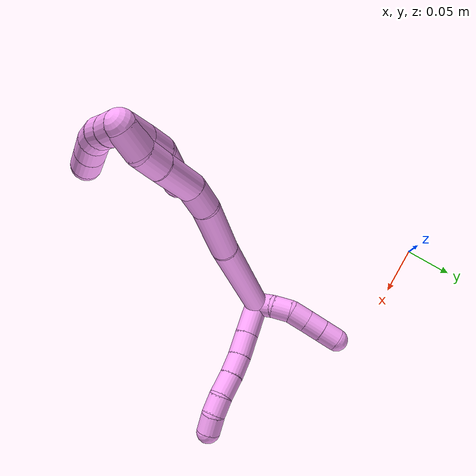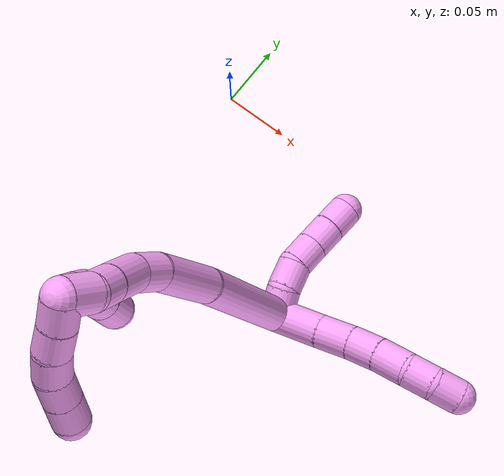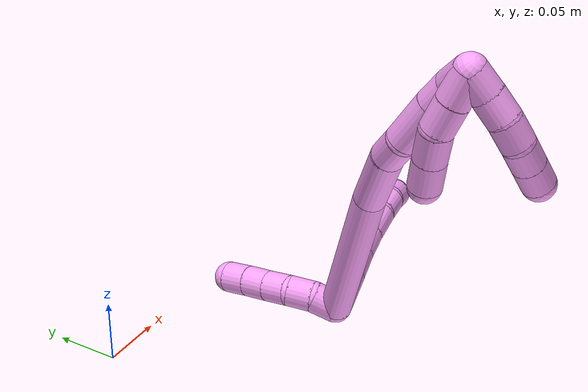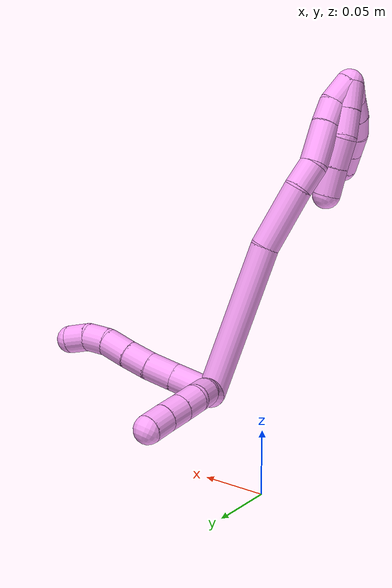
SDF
<sdf version="1.7">
 <world name="default">
  <model name="4">
   <static>0</static>
   <link name="4">
    <collision name="collision-cylinder-e_1_2_8">
     <pose>0.00788 0.016672 2.6e-05 -1.56923 0.441542 -0.440872</pose>
     <geometry><cylinder><radius>0.0125</radius><length>0.036882</length></cylinder></geometry>
     <surface>
      <friction><ode><mu>1.16</mu><mu2>1.16</mu2><slip1>0</slip1><slip2>0</slip2></ode></friction>
      <contact><ode><kp>1e+06</kp><kd>1</kd><max_vel>0</max_vel><min_depth>0.001</min_depth></ode></contact>
     </surface>
    </collision>
    <visual name="visual-cylinder-e_1_2_8">
     <pose>0.00788 0.016672 2.6e-05 -1.56923 0.441542 -0.440872</pose>
     <geometry><cylinder><radius>0.0125</radius><length>0.036882</length></cylinder></geometry>
     <material><ambient>1 0.65098 0.996078 1</ambient></material>
    </visual>
    <collision name="collision-cylinder-e_2_8_9">
     <pose>0.021027 0.044944 0.000166 -1.56102 0.42614 -0.422117</pose>
     <geometry><cylinder><radius>0.0125</radius><length>0.025479</length></cylinder></geometry>
     <surface>
      <friction><ode><mu>1.16</mu><mu2>1.16</mu2><slip1>0</slip1><slip2>0</slip2></ode></friction>
      <contact><ode><kp>1e+06</kp><kd>1</kd><max_vel>0</max_vel><min_depth>0.001</min_depth></ode></contact>
     </surface>
    </collision>
    <visual name="visual-cylinder-e_2_8_9">
     <pose>0.021027 0.044944 0.000166 -1.56102 0.42614 -0.422117</pose>
     <geometry><cylinder><radius>0.0125</radius><length>0.025479</length></cylinder></geometry>
     <material><ambient>1 0.65098 0.996078 1</ambient></material>
    </visual>
    <collision name="collision-cylinder-e_3_9_10">
     <pose>0.031359 0.066611 0.001294 -1.47034 0.46417 -0.421104</pose>
     <geometry><cylinder><radius>0.0125</radius><length>0.022631</length></cylinder></geometry>
     <surface>
      <friction><ode><mu>1.16</mu><mu2>1.16</mu2><slip1>0</slip1><slip2>0</slip2></ode></friction>
      <contact><ode><kp>1e+06</kp><kd>1</kd><max_vel>0</max_vel><min_depth>0.001</min_depth></ode></contact>
     </surface>
    </collision>
    <visual name="visual-cylinder-e_3_9_10">
     <pose>0.031359 0.066611 0.001294 -1.47034 0.46417 -0.421104</pose>
     <geometry><cylinder><radius>0.0125</radius><length>0.022631</length></cylinder></geometry>
     <material><ambient>1 0.65098 0.996078 1</ambient></material>
    </visual>
    <collision name="collision-cylinder-e_4_10_11">
     <pose>0.042529 0.087196 0.003916 -1.41916 0.520916 -0.450009</pose>
     <geometry><cylinder><radius>0.0125</radius><length>0.024533</length></cylinder></geometry>
     <surface>
      <friction><ode><mu>1.16</mu><mu2>1.16</mu2><slip1>0</slip1><slip2>0</slip2></ode></friction>
      <contact><ode><kp>1e+06</kp><kd>1</kd><max_vel>0</max_vel><min_depth>0.001</min_depth></ode></contact>
     </surface>
    </collision>
    <visual name="visual-cylinder-e_4_10_11">
     <pose>0.042529 0.087196 0.003916 -1.41916 0.520916 -0.450009</pose>
     <geometry><cylinder><radius>0.0125</radius><length>0.024533</length></cylinder></geometry>
     <material><ambient>1 0.65098 0.996078 1</ambient></material>
    </visual>
    <collision name="collision-cylinder-e_5_11_12">
     <pose>0.054405 0.106061 0.004383 -1.70653 0.600573 -0.681912</pose>
     <geometry><cylinder><radius>0.0125</radius><length>0.020424</length></cylinder></geometry>
     <surface>
      <friction><ode><mu>1.16</mu><mu2>1.16</mu2><slip1>0</slip1><slip2>0</slip2></ode></friction>
      <contact><ode><kp>1e+06</kp><kd>1</kd><max_vel>0</max_vel><min_depth>0.001</min_depth></ode></contact>
     </surface>
    </collision>
    <visual name="visual-cylinder-e_5_11_12">
     <pose>0.054405 0.106061 0.004383 -1.70653 0.600573 -0.681912</pose>
     <geometry><cylinder><radius>0.0125</radius><length>0.020424</length></cylinder></geometry>
     <material><ambient>1 0.65098 0.996078 1</ambient></material>
    </visual>
    <collision name="collision-cylinder-e_6_12_6">
     <pose>0.066209 0.121304 -0.000828 -2.10409 0.645723 -1.06017</pose>
     <geometry><cylinder><radius>0.0125</radius><length>0.020051</length></cylinder></geometry>
     <surface>
      <friction><ode><mu>1.16</mu><mu2>1.16</mu2><slip1>0</slip1><slip2>0</slip2></ode></friction>
      <contact><ode><kp>1e+06</kp><kd>1</kd><max_vel>0</max_vel><min_depth>0.001</min_depth></ode></contact>
     </surface>
    </collision>
    <visual name="visual-cylinder-e_6_12_6">
     <pose>0.066209 0.121304 -0.000828 -2.10409 0.645723 -1.06017</pose>
     <geometry><cylinder><radius>0.0125</radius><length>0.020051</length></cylinder></geometry>
     <material><ambient>1 0.65098 0.996078 1</ambient></material>
    </visual>
    <collision name="collision-cylinder-e_1_2_13">
     <pose>-0.009051 0.003974 -0.001512 -1.9344 -1.13166 1.4888</pose>
     <geometry><cylinder><radius>0.0125</radius><length>0.02</length></cylinder></geometry>
     <surface>
      <friction><ode><mu>1.16</mu><mu2>1.16</mu2><slip1>0</slip1><slip2>0</slip2></ode></friction>
      <contact><ode><kp>1e+06</kp><kd>1</kd><max_vel>0</max_vel><min_depth>0.001</min_depth></ode></contact>
     </surface>
    </collision>
    <visual name="visual-cylinder-e_1_2_13">
     <pose>-0.009051 0.003974 -0.001512 -1.9344 -1.13166 1.4888</pose>
     <geometry><cylinder><radius>0.0125</radius><length>0.02</length></cylinder></geometry>
     <material><ambient>1 0.65098 0.996078 1</ambient></material>
    </visual>
    <collision name="collision-cylinder-e_2_13_14">
     <pose>-0.026147 0.011692 -0.007635 -2.45951 -0.934833 1.91587</pose>
     <geometry><cylinder><radius>0.0125</radius><length>0.02</length></cylinder></geometry>
     <surface>
      <friction><ode><mu>1.16</mu><mu2>1.16</mu2><slip1>0</slip1><slip2>0</slip2></ode></friction>
      <contact><ode><kp>1e+06</kp><kd>1</kd><max_vel>0</max_vel><min_depth>0.001</min_depth></ode></contact>
     </surface>
    </collision>
    <visual name="visual-cylinder-e_2_13_14">
     <pose>-0.026147 0.011692 -0.007635 -2.45951 -0.934833 1.91587</pose>
     <geometry><cylinder><radius>0.0125</radius><length>0.02</length></cylinder></geometry>
     <material><ambient>1 0.65098 0.996078 1</ambient></material>
    </visual>
    <collision name="collision-cylinder-e_3_14_15">
     <pose>-0.039752 0.020213 -0.019047 -2.52928 -0.589577 1.5306</pose>
     <geometry><cylinder><radius>0.0125</radius><length>0.02</length></cylinder></geometry>
     <surface>
      <friction><ode><mu>1.16</mu><mu2>1.16</mu2><slip1>0</slip1><slip2>0</slip2></ode></friction>
      <contact><ode><kp>1e+06</kp><kd>1</kd><max_vel>0</max_vel><min_depth>0.001</min_depth></ode></contact>
     </surface>
    </collision>
    <visual name="visual-cylinder-e_3_14_15">
     <pose>-0.039752 0.020213 -0.019047 -2.52928 -0.589577 1.5306</pose>
     <geometry><cylinder><radius>0.0125</radius><length>0.02</length></cylinder></geometry>
     <material><ambient>1 0.65098 0.996078 1</ambient></material>
    </visual>
    <collision name="collision-cylinder-e_4_15_16">
     <pose>-0.050846 0.029931 -0.032555 -2.50669 -0.586408 1.48629</pose>
     <geometry><cylinder><radius>0.0125</radius><length>0.02</length></cylinder></geometry>
     <surface>
      <friction><ode><mu>1.16</mu><mu2>1.16</mu2><slip1>0</slip1><slip2>0</slip2></ode></friction>
      <contact><ode><kp>1e+06</kp><kd>1</kd><max_vel>0</max_vel><min_depth>0.001</min_depth></ode></contact>
     </surface>
    </collision>
    <visual name="visual-cylinder-e_4_15_16">
     <pose>-0.050846 0.029931 -0.032555 -2.50669 -0.586408 1.48629</pose>
     <geometry><cylinder><radius>0.0125</radius><length>0.02</length></cylinder></geometry>
     <material><ambient>1 0.65098 0.996078 1</ambient></material>
    </visual>
    <collision name="collision-cylinder-e_5_16_5">
     <pose>-0.061808 0.039633 -0.04618 -2.53879 -0.573723 1.5184</pose>
     <geometry><cylinder><radius>0.0125</radius><length>0.02</length></cylinder></geometry>
     <surface>
      <friction><ode><mu>1.16</mu><mu2>1.16</mu2><slip1>0</slip1><slip2>0</slip2></ode></friction>
      <contact><ode><kp>1e+06</kp><kd>1</kd><max_vel>0</max_vel><min_depth>0.001</min_depth></ode></contact>
     </surface>
    </collision>
    <visual name="visual-cylinder-e_5_16_5">
     <pose>-0.061808 0.039633 -0.04618 -2.53879 -0.573723 1.5184</pose>
     <geometry><cylinder><radius>0.0125</radius><length>0.02</length></cylinder></geometry>
     <material><ambient>1 0.65098 0.996078 1</ambient></material>
    </visual>
    <collision name="collision-cylinder-e_1_2_17">
     <pose>-0.018307 0.007821 0.065094 -0.119573 -0.272292 0.0164</pose>
     <geometry><cylinder><radius>0.0125</radius><length>0.136141</length></cylinder></geometry>
     <surface>
      <friction><ode><mu>1.16</mu><mu2>1.16</mu2><slip1>0</slip1><slip2>0</slip2></ode></friction>
      <contact><ode><kp>1e+06</kp><kd>1</kd><max_vel>0</max_vel><min_depth>0.001</min_depth></ode></contact>
     </surface>
    </collision>
    <visual name="visual-cylinder-e_1_2_17">
     <pose>-0.018307 0.007821 0.065094 -0.119573 -0.272292 0.0164</pose>
     <geometry><cylinder><radius>0.0125</radius><length>0.136141</length></cylinder></geometry>
     <material><ambient>1 0.65098 0.996078 1</ambient></material>
    </visual>
    <collision name="collision-cylinder-e_2_17_18">
     <pose>-0.044403 0.014143 0.157653 0.05451 -0.275983 -0.007572</pose>
     <geometry><cylinder><radius>0.0125</radius><length>0.057175</length></cylinder></geometry>
     <surface>
      <friction><ode><mu>1.16</mu><mu2>1.16</mu2><slip1>0</slip1><slip2>0</slip2></ode></friction>
      <contact><ode><kp>1e+06</kp><kd>1</kd><max_vel>0</max_vel><min_depth>0.001</min_depth></ode></contact>
     </surface>
    </collision>
    <visual name="visual-cylinder-e_2_17_18">
     <pose>-0.044403 0.014143 0.157653 0.05451 -0.275983 -0.007572</pose>
     <geometry><cylinder><radius>0.0125</radius><length>0.057175</length></cylinder></geometry>
     <material><ambient>1 0.65098 0.996078 1</ambient></material>
    </visual>
    <collision name="collision-cylinder-e_3_18_19">
     <pose>-0.053337 0.010966 0.197022 0.140063 -0.094842 -0.006658</pose>
     <geometry><cylinder><radius>0.0125</radius><length>0.024152</length></cylinder></geometry>
     <surface>
      <friction><ode><mu>1.16</mu><mu2>1.16</mu2><slip1>0</slip1><slip2>0</slip2></ode></friction>
      <contact><ode><kp>1e+06</kp><kd>1</kd><max_vel>0</max_vel><min_depth>0.001</min_depth></ode></contact>
     </surface>
    </collision>
    <visual name="visual-cylinder-e_3_18_19">
     <pose>-0.053337 0.010966 0.197022 0.140063 -0.094842 -0.006658</pose>
     <geometry><cylinder><radius>0.0125</radius><length>0.024152</length></cylinder></geometry>
     <material><ambient>1 0.65098 0.996078 1</ambient></material>
    </visual>
    <collision name="collision-cylinder-e_4_19_20">
     <pose>-0.053047 0.011561 0.227538 -0.12151 0.076312 -0.004644</pose>
     <geometry><cylinder><radius>0.0125</radius><length>0.03761</length></cylinder></geometry>
     <surface>
      <friction><ode><mu>1.16</mu><mu2>1.16</mu2><slip1>0</slip1><slip2>0</slip2></ode></friction>
      <contact><ode><kp>1e+06</kp><kd>1</kd><max_vel>0</max_vel><min_depth>0.001</min_depth></ode></contact>
     </surface>
    </collision>
    <visual name="visual-cylinder-e_4_19_20">
     <pose>-0.053047 0.011561 0.227538 -0.12151 0.076312 -0.004644</pose>
     <geometry><cylinder><radius>0.0125</radius><length>0.03761</length></cylinder></geometry>
     <material><ambient>1 0.65098 0.996078 1</ambient></material>
    </visual>
    <collision name="collision-cylinder-e_5_20_21">
     <pose>-0.05048 0.01441 0.256678 -0.054675 0.107024 -0.002929</pose>
     <geometry><cylinder><radius>0.0125</radius><length>0.021209</length></cylinder></geometry>
     <surface>
      <friction><ode><mu>1.16</mu><mu2>1.16</mu2><slip1>0</slip1><slip2>0</slip2></ode></friction>
      <contact><ode><kp>1e+06</kp><kd>1</kd><max_vel>0</max_vel><min_depth>0.001</min_depth></ode></contact>
     </surface>
    </collision>
    <visual name="visual-cylinder-e_5_20_21">
     <pose>-0.05048 0.01441 0.256678 -0.054675 0.107024 -0.002929</pose>
     <geometry><cylinder><radius>0.0125</radius><length>0.021209</length></cylinder></geometry>
     <material><ambient>1 0.65098 0.996078 1</ambient></material>
    </visual>
    <collision name="collision-cylinder-e_6_21_1">
     <pose>-0.04985 0.012259 0.278735 0.232247 -0.04238 -0.004944</pose>
     <geometry><cylinder><radius>0.0125</radius><length>0.023713</length></cylinder></geometry>
     <surface>
      <friction><ode><mu>1.16</mu><mu2>1.16</mu2><slip1>0</slip1><slip2>0</slip2></ode></friction>
      <contact><ode><kp>1e+06</kp><kd>1</kd><max_vel>0</max_vel><min_depth>0.001</min_depth></ode></contact>
     </surface>
    </collision>
    <visual name="visual-cylinder-e_6_21_1">
     <pose>-0.04985 0.012259 0.278735 0.232247 -0.04238 -0.004944</pose>
     <geometry><cylinder><radius>0.0125</radius><length>0.023713</length></cylinder></geometry>
     <material><ambient>1 0.65098 0.996078 1</ambient></material>
    </visual>
    <collision name="collision-cylinder-e_1_1_22">
     <pose>-0.050317 0.005762 0.278516 2.83098 0.002867 0.018309</pose>
     <geometry><cylinder><radius>0.0125</radius><length>0.024673</length></cylinder></geometry>
     <surface>
      <friction><ode><mu>1.16</mu><mu2>1.16</mu2><slip1>0</slip1><slip2>0</slip2></ode></friction>
      <contact><ode><kp>1e+06</kp><kd>1</kd><max_vel>0</max_vel><min_depth>0.001</min_depth></ode></contact>
     </surface>
    </collision>
    <visual name="visual-cylinder-e_1_1_22">
     <pose>-0.050317 0.005762 0.278516 2.83098 0.002867 0.018309</pose>
     <geometry><cylinder><radius>0.0125</radius><length>0.024673</length></cylinder></geometry>
     <material><ambient>1 0.65098 0.996078 1</ambient></material>
    </visual>
    <collision name="collision-cylinder-e_2_22_23">
     <pose>-0.050102 -0.001314 0.255254 2.86203 0.014935 0.106051</pose>
     <geometry><cylinder><radius>0.0125</radius><length>0.023964</length></cylinder></geometry>
     <surface>
      <friction><ode><mu>1.16</mu><mu2>1.16</mu2><slip1>0</slip1><slip2>0</slip2></ode></friction>
      <contact><ode><kp>1e+06</kp><kd>1</kd><max_vel>0</max_vel><min_depth>0.001</min_depth></ode></contact>
     </surface>
    </collision>
    <visual name="visual-cylinder-e_2_22_23">
     <pose>-0.050102 -0.001314 0.255254 2.86203 0.014935 0.106051</pose>
     <geometry><cylinder><radius>0.0125</radius><length>0.023964</length></cylinder></geometry>
     <material><ambient>1 0.65098 0.996078 1</ambient></material>
    </visual>
    <collision name="collision-cylinder-e_3_23_24">
     <pose>-0.045646 -0.007031 0.231552 2.94629 0.331578 2.08226</pose>
     <geometry><cylinder><radius>0.0125</radius><length>0.026277</length></cylinder></geometry>
     <surface>
      <friction><ode><mu>1.16</mu><mu2>1.16</mu2><slip1>0</slip1><slip2>0</slip2></ode></friction>
      <contact><ode><kp>1e+06</kp><kd>1</kd><max_vel>0</max_vel><min_depth>0.001</min_depth></ode></contact>
     </surface>
    </collision>
    <visual name="visual-cylinder-e_3_23_24">
     <pose>-0.045646 -0.007031 0.231552 2.94629 0.331578 2.08226</pose>
     <geometry><cylinder><radius>0.0125</radius><length>0.026277</length></cylinder></geometry>
     <material><ambient>1 0.65098 0.996078 1</ambient></material>
    </visual>
    <collision name="collision-cylinder-e_4_24_4">
     <pose>-0.037166 -0.0122 0.207874 2.90607 0.341763 1.93962</pose>
     <geometry><cylinder><radius>0.0125</radius><length>0.025085</length></cylinder></geometry>
     <surface>
      <friction><ode><mu>1.16</mu><mu2>1.16</mu2><slip1>0</slip1><slip2>0</slip2></ode></friction>
      <contact><ode><kp>1e+06</kp><kd>1</kd><max_vel>0</max_vel><min_depth>0.001</min_depth></ode></contact>
     </surface>
    </collision>
    <visual name="visual-cylinder-e_4_24_4">
     <pose>-0.037166 -0.0122 0.207874 2.90607 0.341763 1.93962</pose>
     <geometry><cylinder><radius>0.0125</radius><length>0.025085</length></cylinder></geometry>
     <material><ambient>1 0.65098 0.996078 1</ambient></material>
    </visual>
    <collision name="collision-cylinder-e_1_1_25">
     <pose>-0.042421 0.004522 0.2868 2.17548 0.915923 1.50872</pose>
     <geometry><cylinder><radius>0.0125</radius><length>0.02</length></cylinder></geometry>
     <surface>
      <friction><ode><mu>1.16</mu><mu2>1.16</mu2><slip1>0</slip1><slip2>0</slip2></ode></friction>
      <contact><ode><kp>1e+06</kp><kd>1</kd><max_vel>0</max_vel><min_depth>0.001</min_depth></ode></contact>
     </surface>
    </collision>
    <visual name="visual-cylinder-e_1_1_25">
     <pose>-0.042421 0.004522 0.2868 2.17548 0.915923 1.50872</pose>
     <geometry><cylinder><radius>0.0125</radius><length>0.02</length></cylinder></geometry>
     <material><ambient>1 0.65098 0.996078 1</ambient></material>
    </visual>
    <collision name="collision-cylinder-e_2_25_26">
     <pose>-0.026885 -0.006027 0.279948 2.12003 0.86408 1.377</pose>
     <geometry><cylinder><radius>0.0125</radius><length>0.02</length></cylinder></geometry>
     <surface>
      <friction><ode><mu>1.16</mu><mu2>1.16</mu2><slip1>0</slip1><slip2>0</slip2></ode></friction>
      <contact><ode><kp>1e+06</kp><kd>1</kd><max_vel>0</max_vel><min_depth>0.001</min_depth></ode></contact>
     </surface>
    </collision>
    <visual name="visual-cylinder-e_2_25_26">
     <pose>-0.026885 -0.006027 0.279948 2.12003 0.86408 1.377</pose>
     <geometry><cylinder><radius>0.0125</radius><length>0.02</length></cylinder></geometry>
     <material><ambient>1 0.65098 0.996078 1</ambient></material>
    </visual>
    <collision name="collision-cylinder-e_3_26_27">
     <pose>-0.011735 -0.015963 0.271686 2.40726 0.854902 1.73926</pose>
     <geometry><cylinder><radius>0.0125</radius><length>0.02</length></cylinder></geometry>
     <surface>
      <friction><ode><mu>1.16</mu><mu2>1.16</mu2><slip1>0</slip1><slip2>0</slip2></ode></friction>
      <contact><ode><kp>1e+06</kp><kd>1</kd><max_vel>0</max_vel><min_depth>0.001</min_depth></ode></contact>
     </surface>
    </collision>
    <visual name="visual-cylinder-e_3_26_27">
     <pose>-0.011735 -0.015963 0.271686 2.40726 0.854902 1.73926</pose>
     <geometry><cylinder><radius>0.0125</radius><length>0.02</length></cylinder></geometry>
     <material><ambient>1 0.65098 0.996078 1</ambient></material>
    </visual>
    <collision name="collision-cylinder-e_4_27_28">
     <pose>0.003462 -0.022392 0.260705 2.82066 0.871214 2.47223</pose>
     <geometry><cylinder><radius>0.0125</radius><length>0.02</length></cylinder></geometry>
     <surface>
      <friction><ode><mu>1.16</mu><mu2>1.16</mu2><slip1>0</slip1><slip2>0</slip2></ode></friction>
      <contact><ode><kp>1e+06</kp><kd>1</kd><max_vel>0</max_vel><min_depth>0.001</min_depth></ode></contact>
     </surface>
    </collision>
    <visual name="visual-cylinder-e_4_27_28">
     <pose>0.003462 -0.022392 0.260705 2.82066 0.871214 2.47223</pose>
     <geometry><cylinder><radius>0.0125</radius><length>0.02</length></cylinder></geometry>
     <material><ambient>1 0.65098 0.996078 1</ambient></material>
    </visual>
    <collision name="collision-cylinder-e_5_28_3">
     <pose>0.018763 -0.026458 0.248484 2.82019 0.871047 2.47117</pose>
     <geometry><cylinder><radius>0.0125</radius><length>0.02</length></cylinder></geometry>
     <surface>
      <friction><ode><mu>1.16</mu><mu2>1.16</mu2><slip1>0</slip1><slip2>0</slip2></ode></friction>
      <contact><ode><kp>1e+06</kp><kd>1</kd><max_vel>0</max_vel><min_depth>0.001</min_depth></ode></contact>
     </surface>
    </collision>
    <visual name="visual-cylinder-e_5_28_3">
     <pose>0.018763 -0.026458 0.248484 2.82019 0.871047 2.47117</pose>
     <geometry><cylinder><radius>0.0125</radius><length>0.02</length></cylinder></geometry>
     <material><ambient>1 0.65098 0.996078 1</ambient></material>
    </visual>
    <collision name="collision-sphere-3">
     <pose>0.026413 -0.028492 0.242373 0 -0 0</pose>
     <geometry><sphere><radius>0.0125</radius></sphere></geometry>
     <surface>
      <friction><ode><mu>1.16</mu><mu2>1.16</mu2><slip1>0</slip1><slip2>0</slip2></ode></friction>
      <contact><ode><kp>1e+06</kp><kd>1</kd><max_vel>0</max_vel><min_depth>0.001</min_depth></ode></contact>
     </surface>
    </collision>
    <visual name="visual-sphere-3">
     <pose>0.026413 -0.028492 0.242373 0 -0 0</pose>
     <geometry><sphere><radius>0.0125</radius></sphere></geometry>
     <material><ambient>1 0.65098 0.996078 1</ambient></material>
    </visual>
    <collision name="collision-sphere-28">
     <pose>0.011113 -0.024423 0.254594 0 -0 0</pose>
     <geometry><sphere><radius>0.0125</radius></sphere></geometry>
     <surface>
      <friction><ode><mu>1.16</mu><mu2>1.16</mu2><slip1>0</slip1><slip2>0</slip2></ode></friction>
      <contact><ode><kp>1e+06</kp><kd>1</kd><max_vel>0</max_vel><min_depth>0.001</min_depth></ode></contact>
     </surface>
    </collision>
    <visual name="visual-sphere-28">
     <pose>0.011113 -0.024423 0.254594 0 -0 0</pose>
     <geometry><sphere><radius>0.0125</radius></sphere></geometry>
     <material><ambient>1 0.65098 0.996078 1</ambient></material>
    </visual>
    <collision name="collision-sphere-27">
     <pose>-0.00419 -0.020361 0.266815 0 -0 0</pose>
     <geometry><sphere><radius>0.0125</radius></sphere></geometry>
     <surface>
      <friction><ode><mu>1.16</mu><mu2>1.16</mu2><slip1>0</slip1><slip2>0</slip2></ode></friction>
      <contact><ode><kp>1e+06</kp><kd>1</kd><max_vel>0</max_vel><min_depth>0.001</min_depth></ode></contact>
     </surface>
    </collision>
    <visual name="visual-sphere-27">
     <pose>-0.00419 -0.020361 0.266815 0 -0 0</pose>
     <geometry><sphere><radius>0.0125</radius></sphere></geometry>
     <material><ambient>1 0.65098 0.996078 1</ambient></material>
    </visual>
    <collision name="collision-sphere-26">
     <pose>-0.01928 -0.011565 0.276558 0 -0 0</pose>
     <geometry><sphere><radius>0.0125</radius></sphere></geometry>
     <surface>
      <friction><ode><mu>1.16</mu><mu2>1.16</mu2><slip1>0</slip1><slip2>0</slip2></ode></friction>
      <contact><ode><kp>1e+06</kp><kd>1</kd><max_vel>0</max_vel><min_depth>0.001</min_depth></ode></contact>
     </surface>
    </collision>
    <visual name="visual-sphere-26">
     <pose>-0.01928 -0.011565 0.276558 0 -0 0</pose>
     <geometry><sphere><radius>0.0125</radius></sphere></geometry>
     <material><ambient>1 0.65098 0.996078 1</ambient></material>
    </visual>
    <collision name="collision-sphere-25">
     <pose>-0.03449 -0.000488 0.283337 0 -0 0</pose>
     <geometry><sphere><radius>0.0125</radius></sphere></geometry>
     <surface>
      <friction><ode><mu>1.16</mu><mu2>1.16</mu2><slip1>0</slip1><slip2>0</slip2></ode></friction>
      <contact><ode><kp>1e+06</kp><kd>1</kd><max_vel>0</max_vel><min_depth>0.001</min_depth></ode></contact>
     </surface>
    </collision>
    <visual name="visual-sphere-25">
     <pose>-0.03449 -0.000488 0.283337 0 -0 0</pose>
     <geometry><sphere><radius>0.0125</radius></sphere></geometry>
     <material><ambient>1 0.65098 0.996078 1</ambient></material>
    </visual>
    <collision name="collision-sphere-4">
     <pose>-0.032962 -0.014957 0.196383 0 -0 0</pose>
     <geometry><sphere><radius>0.0125</radius></sphere></geometry>
     <surface>
      <friction><ode><mu>1.16</mu><mu2>1.16</mu2><slip1>0</slip1><slip2>0</slip2></ode></friction>
      <contact><ode><kp>1e+06</kp><kd>1</kd><max_vel>0</max_vel><min_depth>0.001</min_depth></ode></contact>
     </surface>
    </collision>
    <visual name="visual-sphere-4">
     <pose>-0.032962 -0.014957 0.196383 0 -0 0</pose>
     <geometry><sphere><radius>0.0125</radius></sphere></geometry>
     <material><ambient>1 0.65098 0.996078 1</ambient></material>
    </visual>
    <collision name="collision-sphere-24">
     <pose>-0.041369 -0.009442 0.219365 0 -0 0</pose>
     <geometry><sphere><radius>0.0125</radius></sphere></geometry>
     <surface>
      <friction><ode><mu>1.16</mu><mu2>1.16</mu2><slip1>0</slip1><slip2>0</slip2></ode></friction>
      <contact><ode><kp>1e+06</kp><kd>1</kd><max_vel>0</max_vel><min_depth>0.001</min_depth></ode></contact>
     </surface>
    </collision>
    <visual name="visual-sphere-24">
     <pose>-0.041369 -0.009442 0.219365 0 -0 0</pose>
     <geometry><sphere><radius>0.0125</radius></sphere></geometry>
     <material><ambient>1 0.65098 0.996078 1</ambient></material>
    </visual>
    <collision name="collision-sphere-23">
     <pose>-0.049924 -0.00462 0.243739 0 -0 0</pose>
     <geometry><sphere><radius>0.0125</radius></sphere></geometry>
     <surface>
      <friction><ode><mu>1.16</mu><mu2>1.16</mu2><slip1>0</slip1><slip2>0</slip2></ode></friction>
      <contact><ode><kp>1e+06</kp><kd>1</kd><max_vel>0</max_vel><min_depth>0.001</min_depth></ode></contact>
     </surface>
    </collision>
    <visual name="visual-sphere-23">
     <pose>-0.049924 -0.00462 0.243739 0 -0 0</pose>
     <geometry><sphere><radius>0.0125</radius></sphere></geometry>
     <material><ambient>1 0.65098 0.996078 1</ambient></material>
    </visual>
    <collision name="collision-sphere-22">
     <pose>-0.050281 0.001991 0.26677 0 -0 0</pose>
     <geometry><sphere><radius>0.0125</radius></sphere></geometry>
     <surface>
      <friction><ode><mu>1.16</mu><mu2>1.16</mu2><slip1>0</slip1><slip2>0</slip2></ode></friction>
      <contact><ode><kp>1e+06</kp><kd>1</kd><max_vel>0</max_vel><min_depth>0.001</min_depth></ode></contact>
     </surface>
    </collision>
    <visual name="visual-sphere-22">
     <pose>-0.050281 0.001991 0.26677 0 -0 0</pose>
     <geometry><sphere><radius>0.0125</radius></sphere></geometry>
     <material><ambient>1 0.65098 0.996078 1</ambient></material>
    </visual>
    <collision name="collision-sphere-1">
     <pose>-0.050352 0.009533 0.290262 0 -0 0</pose>
     <geometry><sphere><radius>0.0125</radius></sphere></geometry>
     <surface>
      <friction><ode><mu>1.16</mu><mu2>1.16</mu2><slip1>0</slip1><slip2>0</slip2></ode></friction>
      <contact><ode><kp>1e+06</kp><kd>1</kd><max_vel>0</max_vel><min_depth>0.001</min_depth></ode></contact>
     </surface>
    </collision>
    <visual name="visual-sphere-1">
     <pose>-0.050352 0.009533 0.290262 0 -0 0</pose>
     <geometry><sphere><radius>0.0125</radius></sphere></geometry>
     <material><ambient>1 0.65098 0.996078 1</ambient></material>
    </visual>
    <collision name="collision-sphere-21">
     <pose>-0.049347 0.014986 0.267207 0 -0 0</pose>
     <geometry><sphere><radius>0.0125</radius></sphere></geometry>
     <surface>
      <friction><ode><mu>1.16</mu><mu2>1.16</mu2><slip1>0</slip1><slip2>0</slip2></ode></friction>
      <contact><ode><kp>1e+06</kp><kd>1</kd><max_vel>0</max_vel><min_depth>0.001</min_depth></ode></contact>
     </surface>
    </collision>
    <visual name="visual-sphere-21">
     <pose>-0.049347 0.014986 0.267207 0 -0 0</pose>
     <geometry><sphere><radius>0.0125</radius></sphere></geometry>
     <material><ambient>1 0.65098 0.996078 1</ambient></material>
    </visual>
    <collision name="collision-sphere-12">
     <pose>0.060176 0.114408 0.003243 0 -0 0</pose>
     <geometry><sphere><radius>0.0125</radius></sphere></geometry>
     <surface>
      <friction><ode><mu>1.16</mu><mu2>1.16</mu2><slip1>0</slip1><slip2>0</slip2></ode></friction>
      <contact><ode><kp>1e+06</kp><kd>1</kd><max_vel>0</max_vel><min_depth>0.001</min_depth></ode></contact>
     </surface>
    </collision>
    <visual name="visual-sphere-12">
     <pose>0.060176 0.114408 0.003243 0 -0 0</pose>
     <geometry><sphere><radius>0.0125</radius></sphere></geometry>
     <material><ambient>1 0.65098 0.996078 1</ambient></material>
    </visual>
    <collision name="collision-sphere-11">
     <pose>0.048634 0.097713 0.005523 0 -0 0</pose>
     <geometry><sphere><radius>0.0125</radius></sphere></geometry>
     <surface>
      <friction><ode><mu>1.16</mu><mu2>1.16</mu2><slip1>0</slip1><slip2>0</slip2></ode></friction>
      <contact><ode><kp>1e+06</kp><kd>1</kd><max_vel>0</max_vel><min_depth>0.001</min_depth></ode></contact>
     </surface>
    </collision>
    <visual name="visual-sphere-11">
     <pose>0.048634 0.097713 0.005523 0 -0 0</pose>
     <geometry><sphere><radius>0.0125</radius></sphere></geometry>
     <material><ambient>1 0.65098 0.996078 1</ambient></material>
    </visual>
    <collision name="collision-sphere-10">
     <pose>0.036424 0.076679 0.002309 0 -0 0</pose>
     <geometry><sphere><radius>0.0125</radius></sphere></geometry>
     <surface>
      <friction><ode><mu>1.16</mu><mu2>1.16</mu2><slip1>0</slip1><slip2>0</slip2></ode></friction>
      <contact><ode><kp>1e+06</kp><kd>1</kd><max_vel>0</max_vel><min_depth>0.001</min_depth></ode></contact>
     </surface>
    </collision>
    <visual name="visual-sphere-10">
     <pose>0.036424 0.076679 0.002309 0 -0 0</pose>
     <geometry><sphere><radius>0.0125</radius></sphere></geometry>
     <material><ambient>1 0.65098 0.996078 1</ambient></material>
    </visual>
    <collision name="collision-sphere-9">
     <pose>0.026293 0.056544 0.000279 0 -0 0</pose>
     <geometry><sphere><radius>0.0125</radius></sphere></geometry>
     <surface>
      <friction><ode><mu>1.16</mu><mu2>1.16</mu2><slip1>0</slip1><slip2>0</slip2></ode></friction>
      <contact><ode><kp>1e+06</kp><kd>1</kd><max_vel>0</max_vel><min_depth>0.001</min_depth></ode></contact>
     </surface>
    </collision>
    <visual name="visual-sphere-9">
     <pose>0.026293 0.056544 0.000279 0 -0 0</pose>
     <geometry><sphere><radius>0.0125</radius></sphere></geometry>
     <material><ambient>1 0.65098 0.996078 1</ambient></material>
    </visual>
    <collision name="collision-sphere-2">
     <geometry><sphere><radius>0.0125</radius></sphere></geometry>
     <surface>
      <friction><ode><mu>1.16</mu><mu2>1.16</mu2><slip1>0</slip1><slip2>0</slip2></ode></friction>
      <contact><ode><kp>1e+06</kp><kd>1</kd><max_vel>0</max_vel><min_depth>0.001</min_depth></ode></contact>
     </surface>
    </collision>
    <visual name="visual-sphere-2">
     <geometry><sphere><radius>0.0125</radius></sphere></geometry>
     <material><ambient>1 0.65098 0.996078 1</ambient></material>
    </visual>
    <collision name="collision-sphere-19">
     <pose>-0.05448 0.009288 0.208926 0 -0 0</pose>
     <geometry><sphere><radius>0.0125</radius></sphere></geometry>
     <surface>
      <friction><ode><mu>1.16</mu><mu2>1.16</mu2><slip1>0</slip1><slip2>0</slip2></ode></friction>
      <contact><ode><kp>1e+06</kp><kd>1</kd><max_vel>0</max_vel><min_depth>0.001</min_depth></ode></contact>
     </surface>
    </collision>
    <visual name="visual-sphere-19">
     <pose>-0.05448 0.009288 0.208926 0 -0 0</pose>
     <geometry><sphere><radius>0.0125</radius></sphere></geometry>
     <material><ambient>1 0.65098 0.996078 1</ambient></material>
    </visual>
    <collision name="collision-sphere-8">
     <pose>0.015761 0.033345 5.2e-05 0 -0 0</pose>
     <geometry><sphere><radius>0.0125</radius></sphere></geometry>
     <surface>
      <friction><ode><mu>1.16</mu><mu2>1.16</mu2><slip1>0</slip1><slip2>0</slip2></ode></friction>
      <contact><ode><kp>1e+06</kp><kd>1</kd><max_vel>0</max_vel><min_depth>0.001</min_depth></ode></contact>
     </surface>
    </collision>
    <visual name="visual-sphere-8">
     <pose>0.015761 0.033345 5.2e-05 0 -0 0</pose>
     <geometry><sphere><radius>0.0125</radius></sphere></geometry>
     <material><ambient>1 0.65098 0.996078 1</ambient></material>
    </visual>
    <collision name="collision-sphere-6">
     <pose>0.072242 0.128199 -0.004898 0 -0 0</pose>
     <geometry><sphere><radius>0.0125</radius></sphere></geometry>
     <surface>
      <friction><ode><mu>1.16</mu><mu2>1.16</mu2><slip1>0</slip1><slip2>0</slip2></ode></friction>
      <contact><ode><kp>1e+06</kp><kd>1</kd><max_vel>0</max_vel><min_depth>0.001</min_depth></ode></contact>
     </surface>
    </collision>
    <visual name="visual-sphere-6">
     <pose>0.072242 0.128199 -0.004898 0 -0 0</pose>
     <geometry><sphere><radius>0.0125</radius></sphere></geometry>
     <material><ambient>1 0.65098 0.996078 1</ambient></material>
    </visual>
    <collision name="collision-sphere-13">
     <pose>-0.018102 0.007947 -0.003024 0 -0 0</pose>
     <geometry><sphere><radius>0.0125</radius></sphere></geometry>
     <surface>
      <friction><ode><mu>1.16</mu><mu2>1.16</mu2><slip1>0</slip1><slip2>0</slip2></ode></friction>
      <contact><ode><kp>1e+06</kp><kd>1</kd><max_vel>0</max_vel><min_depth>0.001</min_depth></ode></contact>
     </surface>
    </collision>
    <visual name="visual-sphere-13">
     <pose>-0.018102 0.007947 -0.003024 0 -0 0</pose>
     <geometry><sphere><radius>0.0125</radius></sphere></geometry>
     <material><ambient>1 0.65098 0.996078 1</ambient></material>
    </visual>
    <collision name="collision-sphere-14">
     <pose>-0.034192 0.015436 -0.012245 0 -0 0</pose>
     <geometry><sphere><radius>0.0125</radius></sphere></geometry>
     <surface>
      <friction><ode><mu>1.16</mu><mu2>1.16</mu2><slip1>0</slip1><slip2>0</slip2></ode></friction>
      <contact><ode><kp>1e+06</kp><kd>1</kd><max_vel>0</max_vel><min_depth>0.001</min_depth></ode></contact>
     </surface>
    </collision>
    <visual name="visual-sphere-14">
     <pose>-0.034192 0.015436 -0.012245 0 -0 0</pose>
     <geometry><sphere><radius>0.0125</radius></sphere></geometry>
     <material><ambient>1 0.65098 0.996078 1</ambient></material>
    </visual>
    <collision name="collision-sphere-15">
     <pose>-0.045313 0.02499 -0.025849 0 -0 0</pose>
     <geometry><sphere><radius>0.0125</radius></sphere></geometry>
     <surface>
      <friction><ode><mu>1.16</mu><mu2>1.16</mu2><slip1>0</slip1><slip2>0</slip2></ode></friction>
      <contact><ode><kp>1e+06</kp><kd>1</kd><max_vel>0</max_vel><min_depth>0.001</min_depth></ode></contact>
     </surface>
    </collision>
    <visual name="visual-sphere-15">
     <pose>-0.045313 0.02499 -0.025849 0 -0 0</pose>
     <geometry><sphere><radius>0.0125</radius></sphere></geometry>
     <material><ambient>1 0.65098 0.996078 1</ambient></material>
    </visual>
    <collision name="collision-sphere-16">
     <pose>-0.05638 0.034871 -0.039261 0 -0 0</pose>
     <geometry><sphere><radius>0.0125</radius></sphere></geometry>
     <surface>
      <friction><ode><mu>1.16</mu><mu2>1.16</mu2><slip1>0</slip1><slip2>0</slip2></ode></friction>
      <contact><ode><kp>1e+06</kp><kd>1</kd><max_vel>0</max_vel><min_depth>0.001</min_depth></ode></contact>
     </surface>
    </collision>
    <visual name="visual-sphere-16">
     <pose>-0.05638 0.034871 -0.039261 0 -0 0</pose>
     <geometry><sphere><radius>0.0125</radius></sphere></geometry>
     <material><ambient>1 0.65098 0.996078 1</ambient></material>
    </visual>
    <collision name="collision-sphere-5">
     <pose>-0.067235 0.044394 -0.053098 0 -0 0</pose>
     <geometry><sphere><radius>0.0125</radius></sphere></geometry>
     <surface>
      <friction><ode><mu>1.16</mu><mu2>1.16</mu2><slip1>0</slip1><slip2>0</slip2></ode></friction>
      <contact><ode><kp>1e+06</kp><kd>1</kd><max_vel>0</max_vel><min_depth>0.001</min_depth></ode></contact>
     </surface>
    </collision>
    <visual name="visual-sphere-5">
     <pose>-0.067235 0.044394 -0.053098 0 -0 0</pose>
     <geometry><sphere><radius>0.0125</radius></sphere></geometry>
     <material><ambient>1 0.65098 0.996078 1</ambient></material>
    </visual>
    <collision name="collision-sphere-17">
     <pose>-0.036614 0.015642 0.130189 0 -0 0</pose>
     <geometry><sphere><radius>0.0125</radius></sphere></geometry>
     <surface>
      <friction><ode><mu>1.16</mu><mu2>1.16</mu2><slip1>0</slip1><slip2>0</slip2></ode></friction>
      <contact><ode><kp>1e+06</kp><kd>1</kd><max_vel>0</max_vel><min_depth>0.001</min_depth></ode></contact>
     </surface>
    </collision>
    <visual name="visual-sphere-17">
     <pose>-0.036614 0.015642 0.130189 0 -0 0</pose>
     <geometry><sphere><radius>0.0125</radius></sphere></geometry>
     <material><ambient>1 0.65098 0.996078 1</ambient></material>
    </visual>
    <collision name="collision-sphere-18">
     <pose>-0.052193 0.012644 0.185118 0 -0 0</pose>
     <geometry><sphere><radius>0.0125</radius></sphere></geometry>
     <surface>
      <friction><ode><mu>1.16</mu><mu2>1.16</mu2><slip1>0</slip1><slip2>0</slip2></ode></friction>
      <contact><ode><kp>1e+06</kp><kd>1</kd><max_vel>0</max_vel><min_depth>0.001</min_depth></ode></contact>
     </surface>
    </collision>
    <visual name="visual-sphere-18">
     <pose>-0.052193 0.012644 0.185118 0 -0 0</pose>
     <geometry><sphere><radius>0.0125</radius></sphere></geometry>
     <material><ambient>1 0.65098 0.996078 1</ambient></material>
    </visual>
    <collision name="collision-sphere-20">
     <pose>-0.051613 0.013833 0.24615 0 -0 0</pose>
     <geometry><sphere><radius>0.0125</radius></sphere></geometry>
     <surface>
      <friction><ode><mu>1.16</mu><mu2>1.16</mu2><slip1>0</slip1><slip2>0</slip2></ode></friction>
      <contact><ode><kp>1e+06</kp><kd>1</kd><max_vel>0</max_vel><min_depth>0.001</min_depth></ode></contact>
     </surface>
    </collision>
    <visual name="visual-sphere-20">
     <pose>-0.051613 0.013833 0.24615 0 -0 0</pose>
     <geometry><sphere><radius>0.0125</radius></sphere></geometry>
     <material><ambient>1 0.65098 0.996078 1</ambient></material>
    </visual>
    <inertial>
     <pose>-0.020068 0.018102 0.123401 0 -0 0</pose>
     <mass>0.75</mass>
     <inertia>
      <ixx>0.000263</ixx>
      <ixy>0</ixy>
      <ixz>0</ixz>
      <iyy>0.000273</iyy>
      <iyz>0</iyz>
      <izz>2.5e-05</izz>
     </inertia>
    </inertial>
   </link>
   <pose>0.135201 -0.120453 0.011831 0.496263 0.362346 -0.758768</pose>
  </model>
 </world>
</sdf>
